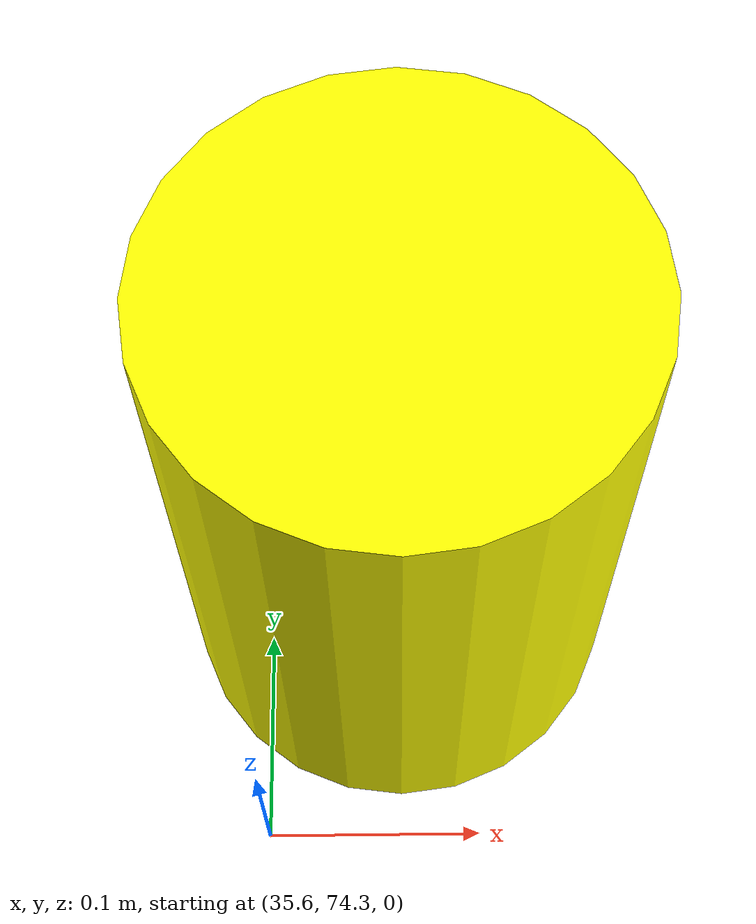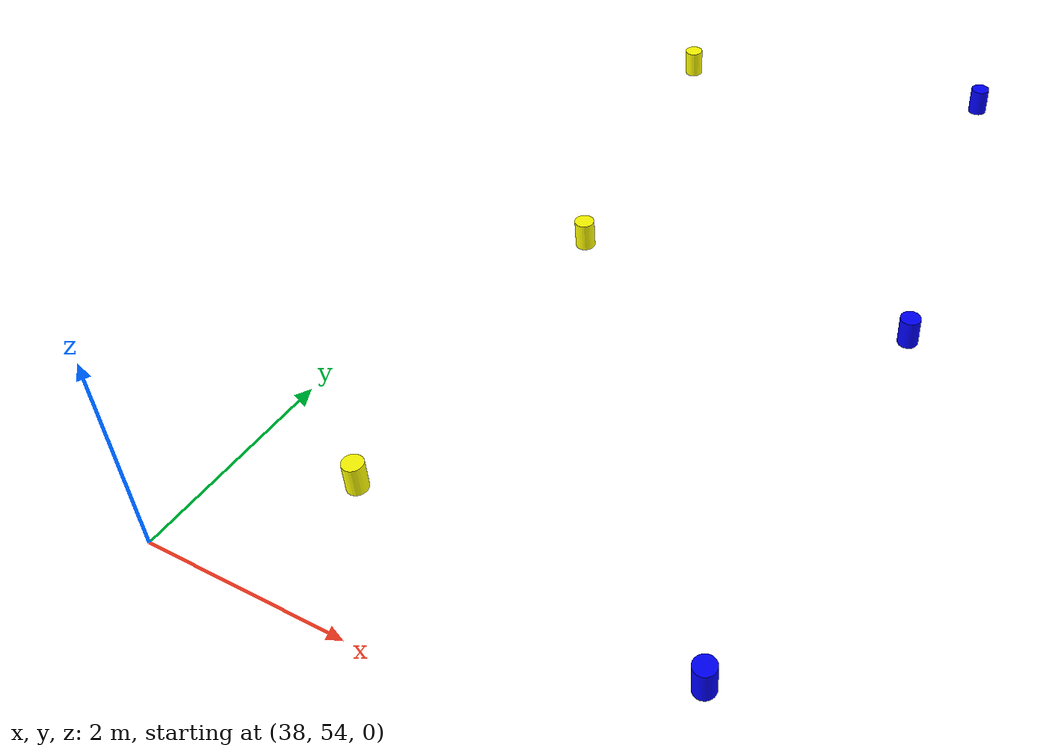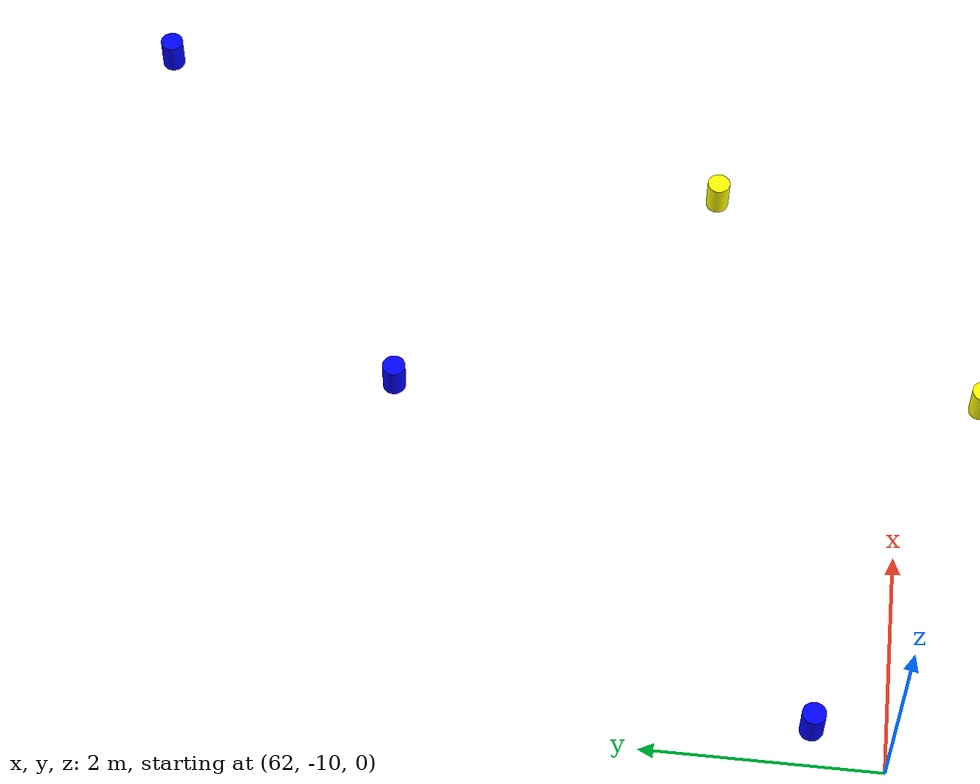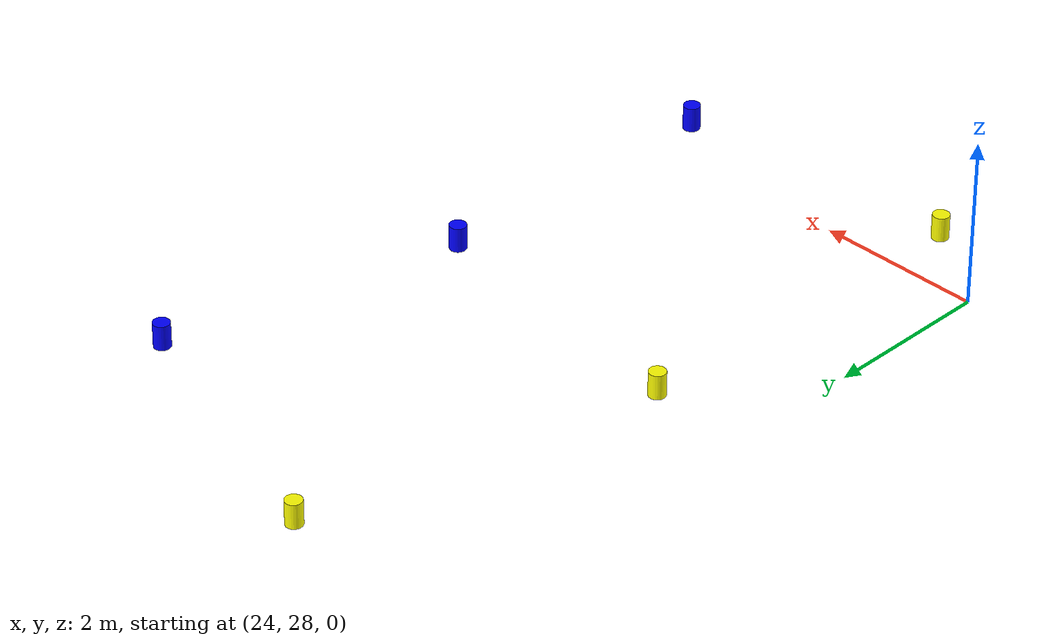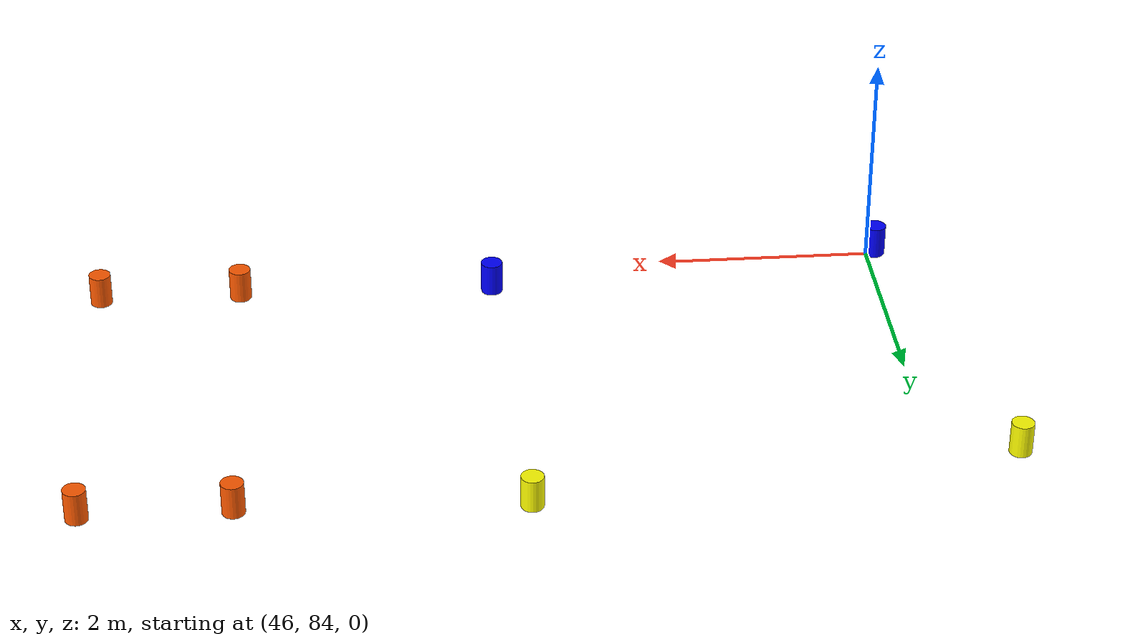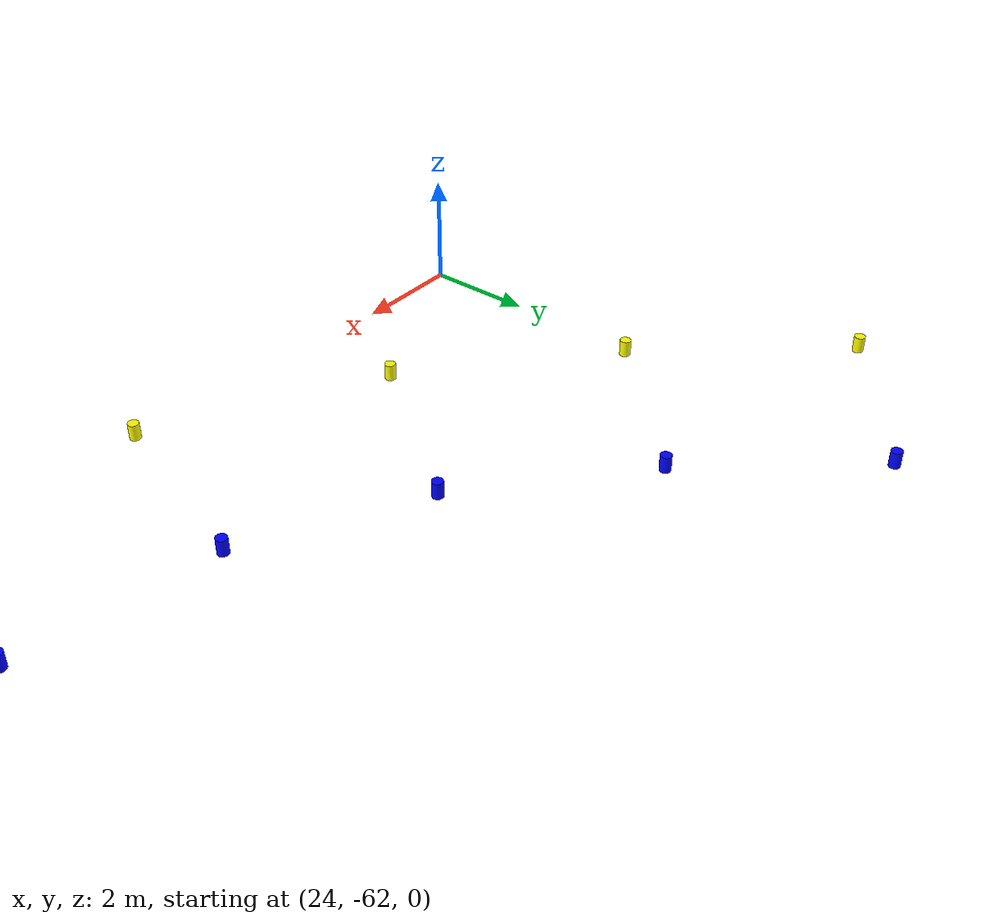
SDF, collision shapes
<?xml version="1.0"?>
<sdf version="1.7">
  <model name="track_trainingmap">
    <static>true</static>

    <include>
      <uri>model://cone_yellow</uri>
      <name>cone_yellow_001</name>
      <pose>55.194 87.752 0.000 0 0 0.000</pose>
    </include>
    <include>
      <uri>model://cone_yellow</uri>
      <name>cone_yellow_002</name>
      <pose>59.118 87.282 0.000 0 0 0.000</pose>
    </include>
    <include>
      <uri>model://cone_yellow</uri>
      <name>cone_yellow_003</name>
      <pose>63.115 86.835 0.000 0 0 0.000</pose>
    </include>
    <include>
      <uri>model://cone_yellow</uri>
      <name>cone_yellow_004</name>
      <pose>67.177 86.261 0.000 0 0 0.000</pose>
    </include>
    <include>
      <uri>model://cone_yellow</uri>
      <name>cone_yellow_005</name>
      <pose>71.335 85.178 0.000 0 0 0.000</pose>
    </include>
    <include>
      <uri>model://cone_yellow</uri>
      <name>cone_yellow_006</name>
      <pose>75.348 82.983 0.000 0 0 0.000</pose>
    </include>
    <include>
      <uri>model://cone_yellow</uri>
      <name>cone_yellow_007</name>
      <pose>78.180 79.541 0.000 0 0 0.000</pose>
    </include>
    <include>
      <uri>model://cone_yellow</uri>
      <name>cone_yellow_008</name>
      <pose>80.430 76.089 0.000 0 0 0.000</pose>
    </include>
    <include>
      <uri>model://cone_yellow</uri>
      <name>cone_yellow_009</name>
      <pose>82.428 72.557 0.000 0 0 0.000</pose>
    </include>
    <include>
      <uri>model://cone_yellow</uri>
      <name>cone_yellow_010</name>
      <pose>84.132 68.450 0.000 0 0 0.000</pose>
    </include>
    <include>
      <uri>model://cone_yellow</uri>
      <name>cone_yellow_011</name>
      <pose>84.734 64.245 0.000 0 0 0.000</pose>
    </include>
    <include>
      <uri>model://cone_yellow</uri>
      <name>cone_yellow_012</name>
      <pose>84.685 59.835 0.000 0 0 0.000</pose>
    </include>
    <include>
      <uri>model://cone_yellow</uri>
      <name>cone_yellow_013</name>
      <pose>83.366 55.526 0.000 0 0 0.000</pose>
    </include>
    <include>
      <uri>model://cone_yellow</uri>
      <name>cone_yellow_014</name>
      <pose>80.972 51.871 0.000 0 0 0.000</pose>
    </include>
    <include>
      <uri>model://cone_yellow</uri>
      <name>cone_yellow_015</name>
      <pose>78.330 48.731 0.000 0 0 0.000</pose>
    </include>
    <include>
      <uri>model://cone_yellow</uri>
      <name>cone_yellow_016</name>
      <pose>75.707 45.723 0.000 0 0 0.000</pose>
    </include>
    <include>
      <uri>model://cone_yellow</uri>
      <name>cone_yellow_017</name>
      <pose>73.322 42.707 0.000 0 0 0.000</pose>
    </include>
    <include>
      <uri>model://cone_yellow</uri>
      <name>cone_yellow_018</name>
      <pose>71.753 39.621 0.000 0 0 0.000</pose>
    </include>
    <include>
      <uri>model://cone_yellow</uri>
      <name>cone_yellow_019</name>
      <pose>71.245 36.308 0.000 0 0 0.000</pose>
    </include>
    <include>
      <uri>model://cone_yellow</uri>
      <name>cone_yellow_020</name>
      <pose>71.959 32.927 0.000 0 0 0.000</pose>
    </include>
    <include>
      <uri>model://cone_yellow</uri>
      <name>cone_yellow_021</name>
      <pose>73.622 30.166 0.000 0 0 0.000</pose>
    </include>
    <include>
      <uri>model://cone_yellow</uri>
      <name>cone_yellow_022</name>
      <pose>76.474 27.524 0.000 0 0 0.000</pose>
    </include>
    <include>
      <uri>model://cone_yellow</uri>
      <name>cone_yellow_023</name>
      <pose>79.417 24.084 0.000 0 0 0.000</pose>
    </include>
    <include>
      <uri>model://cone_yellow</uri>
      <name>cone_yellow_024</name>
      <pose>81.114 20.083 0.000 0 0 0.000</pose>
    </include>
    <include>
      <uri>model://cone_yellow</uri>
      <name>cone_yellow_025</name>
      <pose>82.027 15.815 0.000 0 0 0.000</pose>
    </include>
    <include>
      <uri>model://cone_yellow</uri>
      <name>cone_yellow_026</name>
      <pose>81.909 11.392 0.000 0 0 0.000</pose>
    </include>
    <include>
      <uri>model://cone_yellow</uri>
      <name>cone_yellow_027</name>
      <pose>80.870 7.221 0.000 0 0 0.000</pose>
    </include>
    <include>
      <uri>model://cone_yellow</uri>
      <name>cone_yellow_028</name>
      <pose>79.239 3.305 0.000 0 0 0.000</pose>
    </include>
    <include>
      <uri>model://cone_yellow</uri>
      <name>cone_yellow_029</name>
      <pose>77.071 -0.356 0.000 0 0 0.000</pose>
    </include>
    <include>
      <uri>model://cone_yellow</uri>
      <name>cone_yellow_030</name>
      <pose>73.991 -3.597 0.000 0 0 0.000</pose>
    </include>
    <include>
      <uri>model://cone_yellow</uri>
      <name>cone_yellow_031</name>
      <pose>70.638 -6.019 0.000 0 0 0.000</pose>
    </include>
    <include>
      <uri>model://cone_yellow</uri>
      <name>cone_yellow_032</name>
      <pose>67.553 -8.292 0.000 0 0 0.000</pose>
    </include>
    <include>
      <uri>model://cone_yellow</uri>
      <name>cone_yellow_033</name>
      <pose>65.568 -10.699 0.000 0 0 0.000</pose>
    </include>
    <include>
      <uri>model://cone_yellow</uri>
      <name>cone_yellow_034</name>
      <pose>65.368 -13.747 0.000 0 0 0.000</pose>
    </include>
    <include>
      <uri>model://cone_yellow</uri>
      <name>cone_yellow_035</name>
      <pose>66.021 -17.716 0.000 0 0 0.000</pose>
    </include>
    <include>
      <uri>model://cone_yellow</uri>
      <name>cone_yellow_036</name>
      <pose>65.696 -22.382 0.000 0 0 0.000</pose>
    </include>
    <include>
      <uri>model://cone_yellow</uri>
      <name>cone_yellow_037</name>
      <pose>63.922 -26.366 0.000 0 0 0.000</pose>
    </include>
    <include>
      <uri>model://cone_yellow</uri>
      <name>cone_yellow_038</name>
      <pose>61.902 -29.868 0.000 0 0 0.000</pose>
    </include>
    <include>
      <uri>model://cone_yellow</uri>
      <name>cone_yellow_039</name>
      <pose>60.193 -33.215 0.000 0 0 0.000</pose>
    </include>
    <include>
      <uri>model://cone_yellow</uri>
      <name>cone_yellow_040</name>
      <pose>59.652 -36.336 0.000 0 0 0.000</pose>
    </include>
    <include>
      <uri>model://cone_yellow</uri>
      <name>cone_yellow_041</name>
      <pose>60.416 -39.924 0.000 0 0 0.000</pose>
    </include>
    <include>
      <uri>model://cone_yellow</uri>
      <name>cone_yellow_042</name>
      <pose>60.917 -44.538 0.000 0 0 0.000</pose>
    </include>
    <include>
      <uri>model://cone_yellow</uri>
      <name>cone_yellow_043</name>
      <pose>59.906 -48.752 0.000 0 0 0.000</pose>
    </include>
    <include>
      <uri>model://cone_yellow</uri>
      <name>cone_yellow_044</name>
      <pose>58.160 -52.718 0.000 0 0 0.000</pose>
    </include>
    <include>
      <uri>model://cone_yellow</uri>
      <name>cone_yellow_045</name>
      <pose>55.495 -56.264 0.000 0 0 0.000</pose>
    </include>
    <include>
      <uri>model://cone_yellow</uri>
      <name>cone_yellow_046</name>
      <pose>52.153 -59.049 0.000 0 0 0.000</pose>
    </include>
    <include>
      <uri>model://cone_yellow</uri>
      <name>cone_yellow_047</name>
      <pose>48.306 -61.097 0.000 0 0 0.000</pose>
    </include>
    <include>
      <uri>model://cone_yellow</uri>
      <name>cone_yellow_048</name>
      <pose>44.175 -62.300 0.000 0 0 0.000</pose>
    </include>
    <include>
      <uri>model://cone_yellow</uri>
      <name>cone_yellow_049</name>
      <pose>40.042 -62.947 0.000 0 0 0.000</pose>
    </include>
    <include>
      <uri>model://cone_yellow</uri>
      <name>cone_yellow_050</name>
      <pose>35.783 -63.084 0.000 0 0 0.000</pose>
    </include>
    <include>
      <uri>model://cone_yellow</uri>
      <name>cone_yellow_051</name>
      <pose>31.400 -62.357 0.000 0 0 0.000</pose>
    </include>
    <include>
      <uri>model://cone_yellow</uri>
      <name>cone_yellow_052</name>
      <pose>27.391 -60.268 0.000 0 0 0.000</pose>
    </include>
    <include>
      <uri>model://cone_yellow</uri>
      <name>cone_yellow_053</name>
      <pose>24.130 -57.478 0.000 0 0 0.000</pose>
    </include>
    <include>
      <uri>model://cone_yellow</uri>
      <name>cone_yellow_054</name>
      <pose>21.351 -54.230 0.000 0 0 0.000</pose>
    </include>
    <include>
      <uri>model://cone_yellow</uri>
      <name>cone_yellow_055</name>
      <pose>19.165 -50.327 0.000 0 0 0.000</pose>
    </include>
    <include>
      <uri>model://cone_yellow</uri>
      <name>cone_yellow_056</name>
      <pose>18.588 -45.645 0.000 0 0 0.000</pose>
    </include>
    <include>
      <uri>model://cone_yellow</uri>
      <name>cone_yellow_057</name>
      <pose>19.668 -41.274 0.000 0 0 0.000</pose>
    </include>
    <include>
      <uri>model://cone_yellow</uri>
      <name>cone_yellow_058</name>
      <pose>21.841 -37.397 0.000 0 0 0.000</pose>
    </include>
    <include>
      <uri>model://cone_yellow</uri>
      <name>cone_yellow_059</name>
      <pose>25.451 -34.352 0.000 0 0 0.000</pose>
    </include>
    <include>
      <uri>model://cone_yellow</uri>
      <name>cone_yellow_060</name>
      <pose>29.354 -32.719 0.000 0 0 0.000</pose>
    </include>
    <include>
      <uri>model://cone_yellow</uri>
      <name>cone_yellow_061</name>
      <pose>32.938 -31.301 0.000 0 0 0.000</pose>
    </include>
    <include>
      <uri>model://cone_yellow</uri>
      <name>cone_yellow_062</name>
      <pose>35.758 -29.368 0.000 0 0 0.000</pose>
    </include>
    <include>
      <uri>model://cone_yellow</uri>
      <name>cone_yellow_063</name>
      <pose>38.217 -26.625 0.000 0 0 0.000</pose>
    </include>
    <include>
      <uri>model://cone_yellow</uri>
      <name>cone_yellow_064</name>
      <pose>40.046 -23.510 0.000 0 0 0.000</pose>
    </include>
    <include>
      <uri>model://cone_yellow</uri>
      <name>cone_yellow_065</name>
      <pose>41.169 -20.081 0.000 0 0 0.000</pose>
    </include>
    <include>
      <uri>model://cone_yellow</uri>
      <name>cone_yellow_066</name>
      <pose>41.622 -16.362 0.000 0 0 0.000</pose>
    </include>
    <include>
      <uri>model://cone_yellow</uri>
      <name>cone_yellow_067</name>
      <pose>41.670 -12.506 0.000 0 0 0.000</pose>
    </include>
    <include>
      <uri>model://cone_yellow</uri>
      <name>cone_yellow_068</name>
      <pose>41.436 -8.627 0.000 0 0 0.000</pose>
    </include>
    <include>
      <uri>model://cone_yellow</uri>
      <name>cone_yellow_069</name>
      <pose>40.913 -4.829 0.000 0 0 0.000</pose>
    </include>
    <include>
      <uri>model://cone_yellow</uri>
      <name>cone_yellow_070</name>
      <pose>39.822 -1.497 0.000 0 0 0.000</pose>
    </include>
    <include>
      <uri>model://cone_yellow</uri>
      <name>cone_yellow_071</name>
      <pose>37.906 1.850 0.000 0 0 0.000</pose>
    </include>
    <include>
      <uri>model://cone_yellow</uri>
      <name>cone_yellow_072</name>
      <pose>35.918 5.241 0.000 0 0 0.000</pose>
    </include>
    <include>
      <uri>model://cone_yellow</uri>
      <name>cone_yellow_073</name>
      <pose>33.710 8.508 0.000 0 0 0.000</pose>
    </include>
    <include>
      <uri>model://cone_yellow</uri>
      <name>cone_yellow_074</name>
      <pose>31.419 11.820 0.000 0 0 0.000</pose>
    </include>
    <include>
      <uri>model://cone_yellow</uri>
      <name>cone_yellow_075</name>
      <pose>29.190 15.243 0.000 0 0 0.000</pose>
    </include>
    <include>
      <uri>model://cone_yellow</uri>
      <name>cone_yellow_076</name>
      <pose>27.174 18.932 0.000 0 0 0.000</pose>
    </include>
    <include>
      <uri>model://cone_yellow</uri>
      <name>cone_yellow_077</name>
      <pose>25.763 23.009 0.000 0 0 0.000</pose>
    </include>
    <include>
      <uri>model://cone_yellow</uri>
      <name>cone_yellow_078</name>
      <pose>25.047 27.245 0.000 0 0 0.000</pose>
    </include>
    <include>
      <uri>model://cone_yellow</uri>
      <name>cone_yellow_079</name>
      <pose>25.188 31.611 0.000 0 0 0.000</pose>
    </include>
    <include>
      <uri>model://cone_yellow</uri>
      <name>cone_yellow_080</name>
      <pose>26.230 35.815 0.000 0 0 0.000</pose>
    </include>
    <include>
      <uri>model://cone_yellow</uri>
      <name>cone_yellow_081</name>
      <pose>28.296 39.764 0.000 0 0 0.000</pose>
    </include>
    <include>
      <uri>model://cone_yellow</uri>
      <name>cone_yellow_082</name>
      <pose>30.878 43.051 0.000 0 0 0.000</pose>
    </include>
    <include>
      <uri>model://cone_yellow</uri>
      <name>cone_yellow_083</name>
      <pose>33.554 46.079 0.000 0 0 0.000</pose>
    </include>
    <include>
      <uri>model://cone_yellow</uri>
      <name>cone_yellow_084</name>
      <pose>36.067 49.047 0.000 0 0 0.000</pose>
    </include>
    <include>
      <uri>model://cone_yellow</uri>
      <name>cone_yellow_085</name>
      <pose>38.008 52.203 0.000 0 0 0.000</pose>
    </include>
    <include>
      <uri>model://cone_yellow</uri>
      <name>cone_yellow_086</name>
      <pose>39.121 55.267 0.000 0 0 0.000</pose>
    </include>
    <include>
      <uri>model://cone_yellow</uri>
      <name>cone_yellow_087</name>
      <pose>39.109 59.023 0.000 0 0 0.000</pose>
    </include>
    <include>
      <uri>model://cone_yellow</uri>
      <name>cone_yellow_088</name>
      <pose>38.508 62.639 0.000 0 0 0.000</pose>
    </include>
    <include>
      <uri>model://cone_yellow</uri>
      <name>cone_yellow_089</name>
      <pose>37.537 66.458 0.000 0 0 0.000</pose>
    </include>
    <include>
      <uri>model://cone_yellow</uri>
      <name>cone_yellow_090</name>
      <pose>36.523 70.381 0.000 0 0 0.000</pose>
    </include>
    <include>
      <uri>model://cone_yellow</uri>
      <name>cone_yellow_091</name>
      <pose>35.663 74.420 0.000 0 0 0.000</pose>
    </include>
    <include>
      <uri>model://cone_yellow</uri>
      <name>cone_yellow_092</name>
      <pose>35.315 78.799 0.000 0 0 0.000</pose>
    </include>
    <include>
      <uri>model://cone_yellow</uri>
      <name>cone_yellow_093</name>
      <pose>37.166 83.486 0.000 0 0 0.000</pose>
    </include>
    <include>
      <uri>model://cone_yellow</uri>
      <name>cone_yellow_094</name>
      <pose>41.061 86.162 0.000 0 0 0.000</pose>
    </include>
    <include>
      <uri>model://cone_yellow</uri>
      <name>cone_yellow_095</name>
      <pose>45.258 87.413 0.000 0 0 0.000</pose>
    </include>
    <include>
      <uri>model://cone_yellow</uri>
      <name>cone_yellow_096</name>
      <pose>49.506 87.889 0.000 0 0 0.000</pose>
    </include>
    <include>
      <uri>model://cone_blue</uri>
      <name>cone_blue_001</name>
      <pose>54.720 84.284 0.000 0 0 0.000</pose>
    </include>
    <include>
      <uri>model://cone_blue</uri>
      <name>cone_blue_002</name>
      <pose>58.735 83.803 0.000 0 0 0.000</pose>
    </include>
    <include>
      <uri>model://cone_blue</uri>
      <name>cone_blue_003</name>
      <pose>62.703 83.360 0.000 0 0 0.000</pose>
    </include>
    <include>
      <uri>model://cone_blue</uri>
      <name>cone_blue_004</name>
      <pose>66.571 82.814 0.000 0 0 0.000</pose>
    </include>
    <include>
      <uri>model://cone_blue</uri>
      <name>cone_blue_005</name>
      <pose>70.128 81.893 0.000 0 0 0.000</pose>
    </include>
    <include>
      <uri>model://cone_blue</uri>
      <name>cone_blue_006</name>
      <pose>73.122 80.282 0.000 0 0 0.000</pose>
    </include>
    <include>
      <uri>model://cone_blue</uri>
      <name>cone_blue_007</name>
      <pose>75.307 77.543 0.000 0 0 0.000</pose>
    </include>
    <include>
      <uri>model://cone_blue</uri>
      <name>cone_blue_008</name>
      <pose>77.430 74.285 0.000 0 0 0.000</pose>
    </include>
    <include>
      <uri>model://cone_blue</uri>
      <name>cone_blue_009</name>
      <pose>79.365 70.863 0.000 0 0 0.000</pose>
    </include>
    <include>
      <uri>model://cone_blue</uri>
      <name>cone_blue_010</name>
      <pose>80.732 67.619 0.000 0 0 0.000</pose>
    </include>
    <include>
      <uri>model://cone_blue</uri>
      <name>cone_blue_011</name>
      <pose>81.251 63.903 0.000 0 0 0.000</pose>
    </include>
    <include>
      <uri>model://cone_blue</uri>
      <name>cone_blue_012</name>
      <pose>81.221 60.341 0.000 0 0 0.000</pose>
    </include>
    <include>
      <uri>model://cone_blue</uri>
      <name>cone_blue_013</name>
      <pose>80.202 57.024 0.000 0 0 0.000</pose>
    </include>
    <include>
      <uri>model://cone_blue</uri>
      <name>cone_blue_014</name>
      <pose>78.222 54.036 0.000 0 0 0.000</pose>
    </include>
    <include>
      <uri>model://cone_blue</uri>
      <name>cone_blue_015</name>
      <pose>75.696 51.035 0.000 0 0 0.000</pose>
    </include>
    <include>
      <uri>model://cone_blue</uri>
      <name>cone_blue_016</name>
      <pose>73.043 47.994 0.000 0 0 0.000</pose>
    </include>
    <include>
      <uri>model://cone_blue</uri>
      <name>cone_blue_017</name>
      <pose>70.452 44.710 0.000 0 0 0.000</pose>
    </include>
    <include>
      <uri>model://cone_blue</uri>
      <name>cone_blue_018</name>
      <pose>68.431 40.722 0.000 0 0 0.000</pose>
    </include>
    <include>
      <uri>model://cone_blue</uri>
      <name>cone_blue_019</name>
      <pose>67.747 36.180 0.000 0 0 0.000</pose>
    </include>
    <include>
      <uri>model://cone_blue</uri>
      <name>cone_blue_020</name>
      <pose>68.658 31.763 0.000 0 0 0.000</pose>
    </include>
    <include>
      <uri>model://cone_blue</uri>
      <name>cone_blue_021</name>
      <pose>71.087 27.753 0.000 0 0 0.000</pose>
    </include>
    <include>
      <uri>model://cone_blue</uri>
      <name>cone_blue_022</name>
      <pose>74.105 24.948 0.000 0 0 0.000</pose>
    </include>
    <include>
      <uri>model://cone_blue</uri>
      <name>cone_blue_023</name>
      <pose>76.374 22.356 0.000 0 0 0.000</pose>
    </include>
    <include>
      <uri>model://cone_blue</uri>
      <name>cone_blue_024</name>
      <pose>77.784 19.005 0.000 0 0 0.000</pose>
    </include>
    <include>
      <uri>model://cone_blue</uri>
      <name>cone_blue_025</name>
      <pose>78.545 15.465 0.000 0 0 0.000</pose>
    </include>
    <include>
      <uri>model://cone_blue</uri>
      <name>cone_blue_026</name>
      <pose>78.450 11.927 0.000 0 0 0.000</pose>
    </include>
    <include>
      <uri>model://cone_blue</uri>
      <name>cone_blue_027</name>
      <pose>77.553 8.338 0.000 0 0 0.000</pose>
    </include>
    <include>
      <uri>model://cone_blue</uri>
      <name>cone_blue_028</name>
      <pose>76.108 4.870 0.000 0 0 0.000</pose>
    </include>
    <include>
      <uri>model://cone_blue</uri>
      <name>cone_blue_029</name>
      <pose>74.201 1.648 0.000 0 0 0.000</pose>
    </include>
    <include>
      <uri>model://cone_blue</uri>
      <name>cone_blue_030</name>
      <pose>71.799 -0.868 0.000 0 0 0.000</pose>
    </include>
    <include>
      <uri>model://cone_blue</uri>
      <name>cone_blue_031</name>
      <pose>68.655 -3.135 0.000 0 0 0.000</pose>
    </include>
    <include>
      <uri>model://cone_blue</uri>
      <name>cone_blue_032</name>
      <pose>65.289 -5.623 0.000 0 0 0.000</pose>
    </include>
    <include>
      <uri>model://cone_blue</uri>
      <name>cone_blue_033</name>
      <pose>62.322 -9.390 0.000 0 0 0.000</pose>
    </include>
    <include>
      <uri>model://cone_blue</uri>
      <name>cone_blue_034</name>
      <pose>61.899 -14.207 0.000 0 0 0.000</pose>
    </include>
    <include>
      <uri>model://cone_blue</uri>
      <name>cone_blue_035</name>
      <pose>62.546 -18.133 0.000 0 0 0.000</pose>
    </include>
    <include>
      <uri>model://cone_blue</uri>
      <name>cone_blue_036</name>
      <pose>62.347 -21.365 0.000 0 0 0.000</pose>
    </include>
    <include>
      <uri>model://cone_blue</uri>
      <name>cone_blue_037</name>
      <pose>60.852 -24.684 0.000 0 0 0.000</pose>
    </include>
    <include>
      <uri>model://cone_blue</uri>
      <name>cone_blue_038</name>
      <pose>58.870 -28.120 0.000 0 0 0.000</pose>
    </include>
    <include>
      <uri>model://cone_blue</uri>
      <name>cone_blue_039</name>
      <pose>56.944 -31.913 0.000 0 0 0.000</pose>
    </include>
    <include>
      <uri>model://cone_blue</uri>
      <name>cone_blue_040</name>
      <pose>56.160 -36.583 0.000 0 0 0.000</pose>
    </include>
    <include>
      <uri>model://cone_blue</uri>
      <name>cone_blue_041</name>
      <pose>57.031 -40.814 0.000 0 0 0.000</pose>
    </include>
    <include>
      <uri>model://cone_blue</uri>
      <name>cone_blue_042</name>
      <pose>57.446 -44.088 0.000 0 0 0.000</pose>
    </include>
    <include>
      <uri>model://cone_blue</uri>
      <name>cone_blue_043</name>
      <pose>56.586 -47.644 0.000 0 0 0.000</pose>
    </include>
    <include>
      <uri>model://cone_blue</uri>
      <name>cone_blue_044</name>
      <pose>55.114 -50.993 0.000 0 0 0.000</pose>
    </include>
    <include>
      <uri>model://cone_blue</uri>
      <name>cone_blue_045</name>
      <pose>52.990 -53.820 0.000 0 0 0.000</pose>
    </include>
    <include>
      <uri>model://cone_blue</uri>
      <name>cone_blue_046</name>
      <pose>50.198 -56.146 0.000 0 0 0.000</pose>
    </include>
    <include>
      <uri>model://cone_blue</uri>
      <name>cone_blue_047</name>
      <pose>46.994 -57.852 0.000 0 0 0.000</pose>
    </include>
    <include>
      <uri>model://cone_blue</uri>
      <name>cone_blue_048</name>
      <pose>43.457 -58.874 0.000 0 0 0.000</pose>
    </include>
    <include>
      <uri>model://cone_blue</uri>
      <name>cone_blue_049</name>
      <pose>39.689 -59.465 0.000 0 0 0.000</pose>
    </include>
    <include>
      <uri>model://cone_blue</uri>
      <name>cone_blue_050</name>
      <pose>35.948 -59.588 0.000 0 0 0.000</pose>
    </include>
    <include>
      <uri>model://cone_blue</uri>
      <name>cone_blue_051</name>
      <pose>32.459 -59.021 0.000 0 0 0.000</pose>
    </include>
    <include>
      <uri>model://cone_blue</uri>
      <name>cone_blue_052</name>
      <pose>29.422 -57.418 0.000 0 0 0.000</pose>
    </include>
    <include>
      <uri>model://cone_blue</uri>
      <name>cone_blue_053</name>
      <pose>26.610 -55.008 0.000 0 0 0.000</pose>
    </include>
    <include>
      <uri>model://cone_blue</uri>
      <name>cone_blue_054</name>
      <pose>24.185 -52.176 0.000 0 0 0.000</pose>
    </include>
    <include>
      <uri>model://cone_blue</uri>
      <name>cone_blue_055</name>
      <pose>22.445 -49.105 0.000 0 0 0.000</pose>
    </include>
    <include>
      <uri>model://cone_blue</uri>
      <name>cone_blue_056</name>
      <pose>22.075 -45.950 0.000 0 0 0.000</pose>
    </include>
    <include>
      <uri>model://cone_blue</uri>
      <name>cone_blue_057</name>
      <pose>22.914 -42.582 0.000 0 0 0.000</pose>
    </include>
    <include>
      <uri>model://cone_blue</uri>
      <name>cone_blue_058</name>
      <pose>24.644 -39.493 0.000 0 0 0.000</pose>
    </include>
    <include>
      <uri>model://cone_blue</uri>
      <name>cone_blue_059</name>
      <pose>27.070 -37.455 0.000 0 0 0.000</pose>
    </include>
    <include>
      <uri>model://cone_blue</uri>
      <name>cone_blue_060</name>
      <pose>30.562 -36.004 0.000 0 0 0.000</pose>
    </include>
    <include>
      <uri>model://cone_blue</uri>
      <name>cone_blue_061</name>
      <pose>34.425 -34.470 0.000 0 0 0.000</pose>
    </include>
    <include>
      <uri>model://cone_blue</uri>
      <name>cone_blue_062</name>
      <pose>38.161 -31.913 0.000 0 0 0.000</pose>
    </include>
    <include>
      <uri>model://cone_blue</uri>
      <name>cone_blue_063</name>
      <pose>41.030 -28.708 0.000 0 0 0.000</pose>
    </include>
    <include>
      <uri>model://cone_blue</uri>
      <name>cone_blue_064</name>
      <pose>43.240 -24.942 0.000 0 0 0.000</pose>
    </include>
    <include>
      <uri>model://cone_blue</uri>
      <name>cone_blue_065</name>
      <pose>44.593 -20.806 0.000 0 0 0.000</pose>
    </include>
    <include>
      <uri>model://cone_blue</uri>
      <name>cone_blue_066</name>
      <pose>45.117 -16.560 0.000 0 0 0.000</pose>
    </include>
    <include>
      <uri>model://cone_blue</uri>
      <name>cone_blue_067</name>
      <pose>45.169 -12.415 0.000 0 0 0.000</pose>
    </include>
    <include>
      <uri>model://cone_blue</uri>
      <name>cone_blue_068</name>
      <pose>44.921 -8.297 0.000 0 0 0.000</pose>
    </include>
    <include>
      <uri>model://cone_blue</uri>
      <name>cone_blue_069</name>
      <pose>44.347 -4.150 0.000 0 0 0.000</pose>
    </include>
    <include>
      <uri>model://cone_blue</uri>
      <name>cone_blue_070</name>
      <pose>42.960 0.053 0.000 0 0 0.000</pose>
    </include>
    <include>
      <uri>model://cone_blue</uri>
      <name>cone_blue_071</name>
      <pose>40.927 3.618 0.000 0 0 0.000</pose>
    </include>
    <include>
      <uri>model://cone_blue</uri>
      <name>cone_blue_072</name>
      <pose>38.865 7.130 0.000 0 0 0.000</pose>
    </include>
    <include>
      <uri>model://cone_blue</uri>
      <name>cone_blue_073</name>
      <pose>36.584 10.506 0.000 0 0 0.000</pose>
    </include>
    <include>
      <uri>model://cone_blue</uri>
      <name>cone_blue_074</name>
      <pose>34.313 13.788 0.000 0 0 0.000</pose>
    </include>
    <include>
      <uri>model://cone_blue</uri>
      <name>cone_blue_075</name>
      <pose>32.174 17.072 0.000 0 0 0.000</pose>
    </include>
    <include>
      <uri>model://cone_blue</uri>
      <name>cone_blue_076</name>
      <pose>30.349 20.403 0.000 0 0 0.000</pose>
    </include>
    <include>
      <uri>model://cone_blue</uri>
      <name>cone_blue_077</name>
      <pose>29.153 23.879 0.000 0 0 0.000</pose>
    </include>
    <include>
      <uri>model://cone_blue</uri>
      <name>cone_blue_078</name>
      <pose>28.537 27.506 0.000 0 0 0.000</pose>
    </include>
    <include>
      <uri>model://cone_blue</uri>
      <name>cone_blue_079</name>
      <pose>28.653 31.119 0.000 0 0 0.000</pose>
    </include>
    <include>
      <uri>model://cone_blue</uri>
      <name>cone_blue_080</name>
      <pose>29.533 34.655 0.000 0 0 0.000</pose>
    </include>
    <include>
      <uri>model://cone_blue</uri>
      <name>cone_blue_081</name>
      <pose>31.173 37.771 0.000 0 0 0.000</pose>
    </include>
    <include>
      <uri>model://cone_blue</uri>
      <name>cone_blue_082</name>
      <pose>33.536 40.774 0.000 0 0 0.000</pose>
    </include>
    <include>
      <uri>model://cone_blue</uri>
      <name>cone_blue_083</name>
      <pose>36.169 43.752 0.000 0 0 0.000</pose>
    </include>
    <include>
      <uri>model://cone_blue</uri>
      <name>cone_blue_084</name>
      <pose>38.841 46.913 0.000 0 0 0.000</pose>
    </include>
    <include>
      <uri>model://cone_blue</uri>
      <name>cone_blue_085</name>
      <pose>41.095 50.553 0.000 0 0 0.000</pose>
    </include>
    <include>
      <uri>model://cone_blue</uri>
      <name>cone_blue_086</name>
      <pose>42.603 54.911 0.000 0 0 0.000</pose>
    </include>
    <include>
      <uri>model://cone_blue</uri>
      <name>cone_blue_087</name>
      <pose>42.606 59.170 0.000 0 0 0.000</pose>
    </include>
    <include>
      <uri>model://cone_blue</uri>
      <name>cone_blue_088</name>
      <pose>41.917 63.430 0.000 0 0 0.000</pose>
    </include>
    <include>
      <uri>model://cone_blue</uri>
      <name>cone_blue_089</name>
      <pose>40.920 67.354 0.000 0 0 0.000</pose>
    </include>
    <include>
      <uri>model://cone_blue</uri>
      <name>cone_blue_090</name>
      <pose>39.923 71.213 0.000 0 0 0.000</pose>
    </include>
    <include>
      <uri>model://cone_blue</uri>
      <name>cone_blue_091</name>
      <pose>39.114 75.005 0.000 0 0 0.000</pose>
    </include>
    <include>
      <uri>model://cone_blue</uri>
      <name>cone_blue_092</name>
      <pose>38.811 78.621 0.000 0 0 0.000</pose>
    </include>
    <include>
      <uri>model://cone_blue</uri>
      <name>cone_blue_093</name>
      <pose>39.780 81.158 0.000 0 0 0.000</pose>
    </include>
    <include>
      <uri>model://cone_blue</uri>
      <name>cone_blue_094</name>
      <pose>42.450 82.949 0.000 0 0 0.000</pose>
    </include>
    <include>
      <uri>model://cone_blue</uri>
      <name>cone_blue_095</name>
      <pose>45.917 83.976 0.000 0 0 0.000</pose>
    </include>
    <include>
      <uri>model://cone_blue</uri>
      <name>cone_blue_096</name>
      <pose>49.636 84.391 0.000 0 0 0.000</pose>
    </include>
    <include>
      <uri>model://cone_orange</uri>
      <name>cone_orange_001</name>
      <pose>51.997 84.342 0.000 0 0 0.000</pose>
    </include>
    <include>
      <uri>model://cone_orange</uri>
      <name>cone_orange_002</name>
      <pose>51.997 87.795 0.000 0 0 0.000</pose>
    </include>
    <include>
      <uri>model://cone_orange</uri>
      <name>cone_orange_003</name>
      <pose>53.297 87.795 0.000 0 0 0.000</pose>
    </include>
    <include>
      <uri>model://cone_orange</uri>
      <name>cone_orange_004</name>
      <pose>53.297 84.342 0.000 0 0 0.000</pose>
    </include>

  </model>
</sdf>

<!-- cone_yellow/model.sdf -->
<sdf version="1.6">
  <model name="cone_yellow">
    <static>1</static>
    <link name="link">

      <visual name="visual">
        <pose>0 0 0 0 0 0</pose>
        <geometry>
          <mesh>
            <uri>model://cone_yellow/meshes/cone.stl</uri>
            <scale>0.005 0.005 0.005</scale>
          </mesh>
        </geometry>
        <material>
          <ambient>1.0 1.0 0.0 1</ambient>
          <diffuse>1.0 1.0 0.0 1</diffuse>
        </material>
      </visual>

      <collision name="collision">
        <pose>0 0 0.15 0 0 0</pose>
        <geometry>
          <cylinder>
            <radius>0.1</radius>
            <length>0.3</length>
          </cylinder>
        </geometry>
        <surface>
          <friction>
            <ode>
              <mu>0.9</mu> <mu2>0.9</mu2> </ode>
          </friction>
        </surface>
      </collision>

      <inertial>
        <pose>0 0 0.05 0 0 0</pose>
        <mass>1</mass>
        <inertia>
          <ixx>0.01</ixx> <iyy>0.01</iyy> <izz>0.005</izz>
          <ixy>0.0</ixy> <ixz>0.0</ixz> <iyz>0.0</iyz>
        </inertia>
      </inertial>

    </link>
  </model>
</sdf>

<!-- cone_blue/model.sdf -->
<sdf version="1.6">
  <model name="cone_blue">
    <static>1</static>
    <link name="link">

      <inertial>
        <pose>0 0 0.05 0 0 0</pose> <mass>1</mass>
        <inertia>
          <ixx>0.01</ixx> <iyy>0.01</iyy> <izz>0.005</izz>
          <ixy>0.0</ixy> <ixz>0.0</ixz> <iyz>0.0</iyz>
        </inertia>
      </inertial>

      <collision name="collision">
        <pose>0 0 0.15 0 0 0</pose>
        <geometry>
          <cylinder>
            <radius>0.1</radius>
            <length>0.3</length>
          </cylinder>
        </geometry>
      </collision>

      <visual name="visual">
        <pose>0 0 0 0 0 0</pose>
        <geometry>
          <mesh>
            <uri>model://cone_blue/meshes/cone.stl</uri>
            <scale>0.005 0.005 0.005</scale>
          </mesh>
        </geometry>
        <material>
          <ambient>0.0 0.0 1.0 1</ambient>
          <diffuse>0.0 0.0 1.0 1</diffuse>
        </material>
      </visual>

    </link>
  </model>
</sdf>

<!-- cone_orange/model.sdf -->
<sdf version="1.6">
  <model name="cone_orange">
    <static>1</static>
    <link name="link">

      <visual name="visual">
        <pose>0 0 0 0 0 0</pose>
        <geometry>
          <mesh>
            <uri>model://cone_orange/meshes/cone.stl</uri>
            <scale>0.005 0.005 0.005</scale>
          </mesh>
        </geometry>
        <material>
          <ambient>1.0 0.35 0.0 1</ambient>
          <diffuse>1.0 0.35 0.0 1</diffuse>
        </material>
      </visual>

      <collision name="collision">
        <pose>0 0 0.15 0 0 0</pose>
        <geometry>
          <cylinder>
            <radius>0.1</radius>
            <length>0.3</length>
          </cylinder>
        </geometry>
        <surface>
          <friction>
            <ode>
              <mu>0.9</mu> <mu2>0.9</mu2>
            </ode>
          </friction>
        </surface>
      </collision>

      <inertial>
        <pose>0 0 0.05 0 0 0</pose> <mass>1.0</mass>
        <inertia>
          <ixx>0.01</ixx> <iyy>0.01</iyy> <izz>0.005</izz>
          <ixy>0.0</ixy> <ixz>0.0</ixz> <iyz>0.0</iyz>
        </inertia>
      </inertial>

    </link>
  </model>
</sdf>
